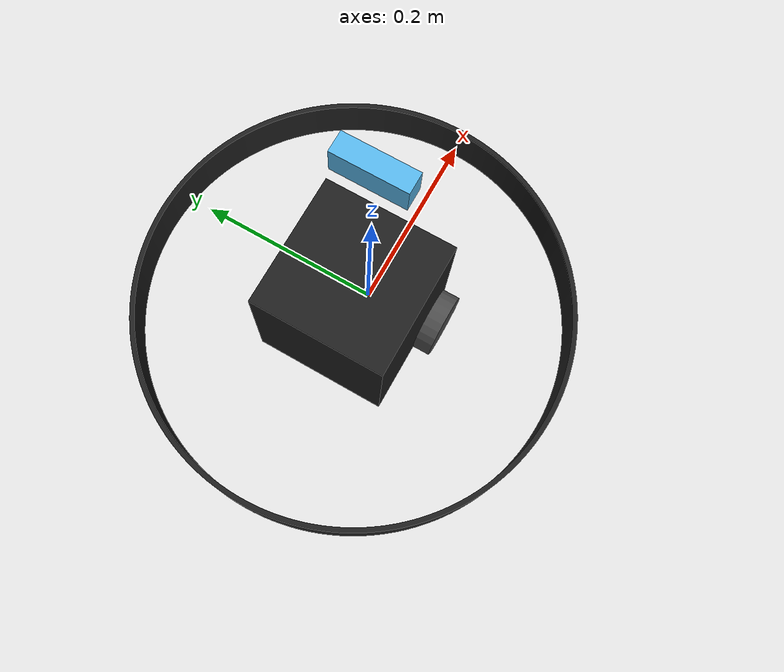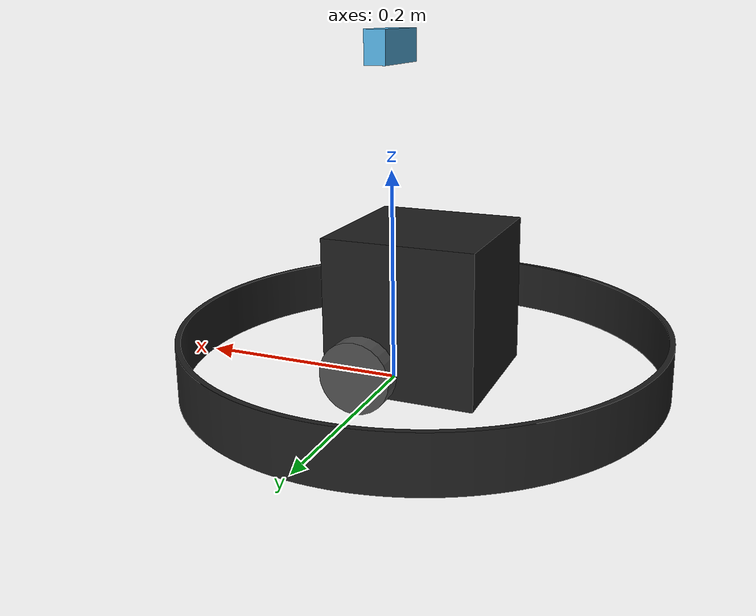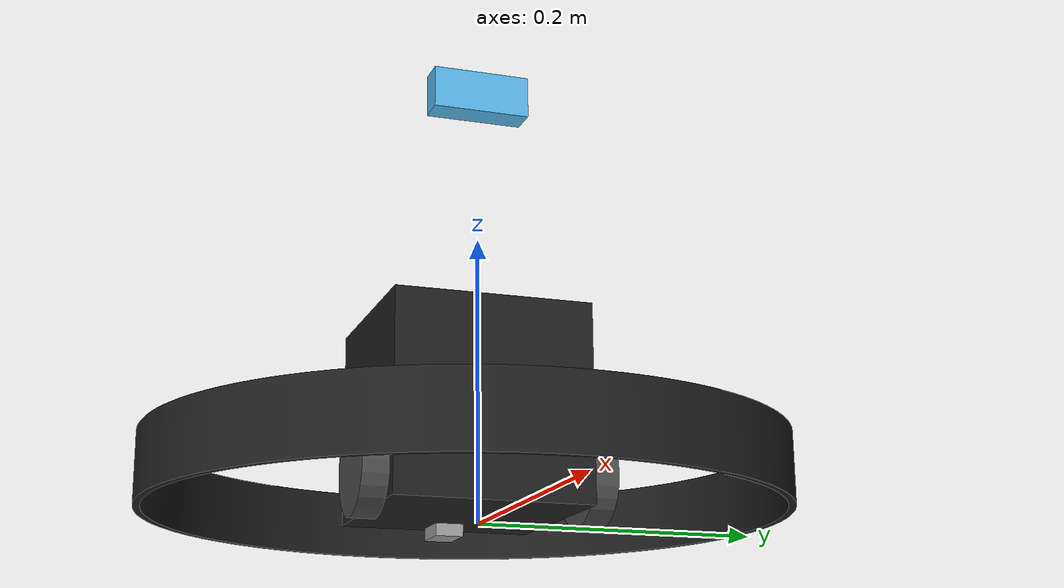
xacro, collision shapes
<?xml version="1.0" ?>
<robot name="turtlebot3_burger" xmlns:xacro="http://ros.org/wiki/xacro">
  <xacro:include filename="$(find turtlebot3_description)/urdf/common_properties.xacro"/>
  <xacro:include filename="$(find turtlebot3_description)/urdf/robotutil.gazebo.xacro"/>

  <link name="base_footprint"/>

  <joint name="base_joint" type="fixed">
    <parent link="base_footprint"/>
    <child link="base_link"/>
    <origin xyz="0.0 0.0 0.010" rpy="0 0 0"/>
  </joint>

  <link name="camera_link">
    <visual name="camera">
      <origin xyz="0 0 0" rpy="1.5708 0 1.5708"/>
      <geometry>
        <mesh filename="package://robotino_description/meshes/Intel_Realsense_D435.stl" scale="0.001 0.001 0.001"/>
      </geometry>
    </visual>
    <collision name="camera">
      <origin xyz="0 0 0" rpy="0 0 0"/>
      <geometry>
        <box size="0.02 0.07 0.03" />
      </geometry>
    </collision>

    <inertial>
      <mass value="1e-5" />
      <origin xyz="0 0 0" rpy="0 0 0"/>
      <inertia ixx="1e-6" ixy="0" ixz="0" iyy="1e-6" iyz="0" izz="1e-6" />
    </inertial>
  </link>

  <joint name="camera_joint" type="fixed">
    <parent link="base_link"/>
    <child link="camera_link"/>
    <origin xyz="0 0 0.3" rpy="0 0 0"/>
    <axis xyz="0 0 0"/>
  </joint>

  <link name="base_link">
    <visual>
      <origin xyz="-0.032 0 0.0" rpy="0 0 0"/>
      <geometry>
        <mesh filename="package://turtlebot3_description/meshes/bases/burger_base.stl" scale="0.001 0.001 0.001"/>
      </geometry>
      <material name="light_black"/>
    </visual>

    <collision>
      <origin xyz="-0.032 0 0.070" rpy="0 0 0"/>
      <geometry>
        <box size="0.140 0.140 0.140"/>
      </geometry>
    </collision>

    <inertial>
      <origin xyz="-0.032 0 0" rpy="0 0 0"/>
      <mass value="1"/>
      <inertia ixx="0.01" ixy="0.0" ixz="0.0"
               iyy="0.01" iyz="0.0"
               izz="0.01" />
    </inertial>
  </link>

   <link name="cover_link">
    <visual>
      <origin xyz="-0.032 0 -0.12" rpy="1.5708 0 1.5708"/>
      <geometry>
        <mesh filename="package://robotino_description/meshes/robotino_body_diy.stl" scale="0.001 0.001 0.001"/>
      </geometry>
      <material name="light_black"/>
    </visual>

    <collision name="bumper_collision">
      <origin xyz="-0.032 0 -0.1" rpy="1.5708 0 1.5708"/>
      <geometry>
        <mesh filename="package://robotino_description/meshes/bumper.stl" scale="0.001 0.001 0.001"/>
      </geometry>
    </collision>

    <inertial>
      <origin xyz="0 0 0" rpy="0 0 0"/>
      <mass value="0.0001"/>
      <inertia ixx="0.001" ixy="0.0" ixz="0.0"
               iyy="0.001" iyz="0.0"
               izz="0.001" />
    </inertial>
  </link>

  <joint name="cover_joint" type="fixed">
    <parent link="base_link"/>
    <child link="cover_link"/>
    <origin xyz="0.0 0.0 0.1" rpy="0 0 0"/>
    <axis xyz="0 0 0"/>
  </joint>

  <joint name="wheel_left_joint" type="continuous">
    <parent link="base_link"/>
    <child link="wheel_left_link"/>
    <origin xyz="0.0 0.08 0.023" rpy="${-M_PI*0.5} 0 0"/>
    <axis xyz="0 0 1"/>
  </joint>

  <link name="wheel_left_link">
    <visual>
      <origin xyz="0 0 0" rpy="${M_PI*0.5} 0 0"/>
      <geometry>
        <mesh filename="package://turtlebot3_description/meshes/wheels/left_tire.stl" scale="0.001 0.001 0.001"/>
      </geometry>
      <material name="dark"/>
    </visual>

    <collision>
      <origin xyz="0 0 0" rpy="0 0 0"/>
      <geometry>
        <cylinder length="0.018" radius="0.033"/>
      </geometry>
    </collision>

    <inertial>
      <origin xyz="0 0 0" />
      <mass value="0.01" />
      <inertia ixx="0.001" ixy="0.0" ixz="0.0"
               iyy="0.001" iyz="0.0"
               izz="0.001" />
    </inertial>
  </link>

  <joint name="wheel_right_joint" type="continuous">
    <parent link="base_link"/>
    <child link="wheel_right_link"/>
    <origin xyz="0.0 -0.08 0.023" rpy="${-M_PI*0.5} 0 0"/>
    <axis xyz="0 0 1"/>
  </joint>

  <link name="wheel_right_link">
    <visual>
      <origin xyz="0 0 0" rpy="${M_PI*0.5} 0 0"/>
      <geometry>
        <mesh filename="package://turtlebot3_description/meshes/wheels/right_tire.stl" scale="0.001 0.001 0.001"/>
      </geometry>
      <material name="dark"/>
    </visual>

    <collision>
      <origin xyz="0 0 0" rpy="0 0 0"/>
      <geometry>
        <cylinder length="0.018" radius="0.033"/>
      </geometry>
    </collision>

    <inertial>
      <origin xyz="0 0 0" />
      <mass value="0.01" />
      <inertia ixx="0.001" ixy="0.0" ixz="0.0"
               iyy="0.001" iyz="0.0"
               izz="0.001" />
    </inertial>
  </link>

  <joint name="caster_back_joint" type="fixed">
    <parent link="base_link"/>
    <child link="caster_back_link"/>
    <origin xyz="-0.081 0 -0.004" rpy="${-M_PI*0.5} 0 0"/>
  </joint>

  <link name="caster_back_link">
    <collision>
      <origin xyz="0 0 0" rpy="0 0 0"/>
      <geometry>
        <box size="0.030 0.010 0.020"/>
      </geometry>
    </collision>

    <inertial>
      <origin xyz="0 0 0" />
      <mass value="0.01" />
      <inertia ixx="0.001" ixy="0.0" ixz="0.0"
               iyy="0.001" iyz="0.0"
               izz="0.001" />
    </inertial>
  </link>

  <joint name="imu_joint" type="fixed">
    <parent link="base_link"/>
    <child link="imu_link"/>
    <origin xyz="-0.032 0 0.068" rpy="0 0 0"/>
  </joint>

  <link name="imu_link"/>

  <joint name="scan_joint" type="fixed">
    <parent link="base_link"/>
    <child link="base_scan"/>
    <origin xyz="-0.032 0 0.03" rpy="0 0 0"/>
  </joint>

  <link name="base_scan">
    <visual>
      <origin xyz="0 0 0.0" rpy="0 0 0"/>
      <geometry>
        <mesh filename="package://turtlebot3_description/meshes/sensors/lds.stl" scale="0.001 0.001 0.001"/>
      </geometry>
      <material name="dark"/>
    </visual>

    <collision>
      <origin xyz="0 0 0" rpy="0 0 0"/>
      <geometry>
        <cylinder length="0.0408" radius="0.070"/>
      </geometry>
    </collision>

    <inertial>
      <mass value="0.01" />
      <origin xyz="0 0 0" />
      <inertia ixx="0.001" ixy="0.0" ixz="0.0"
               iyy="0.001" iyz="0.0"
               izz="0.001" />
    </inertial>
  </link>

</robot>
